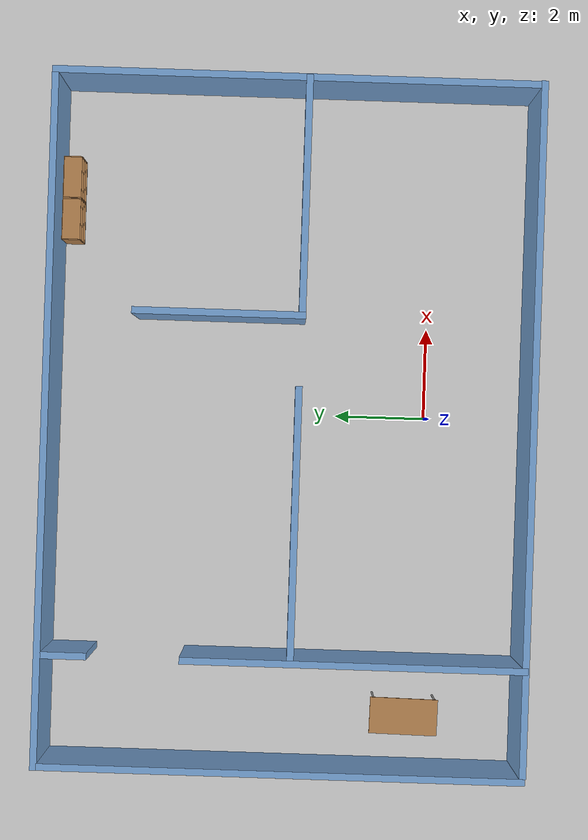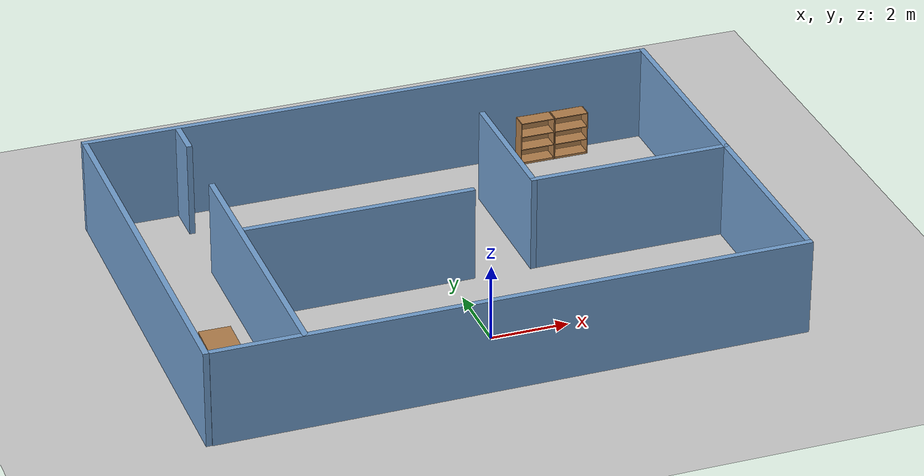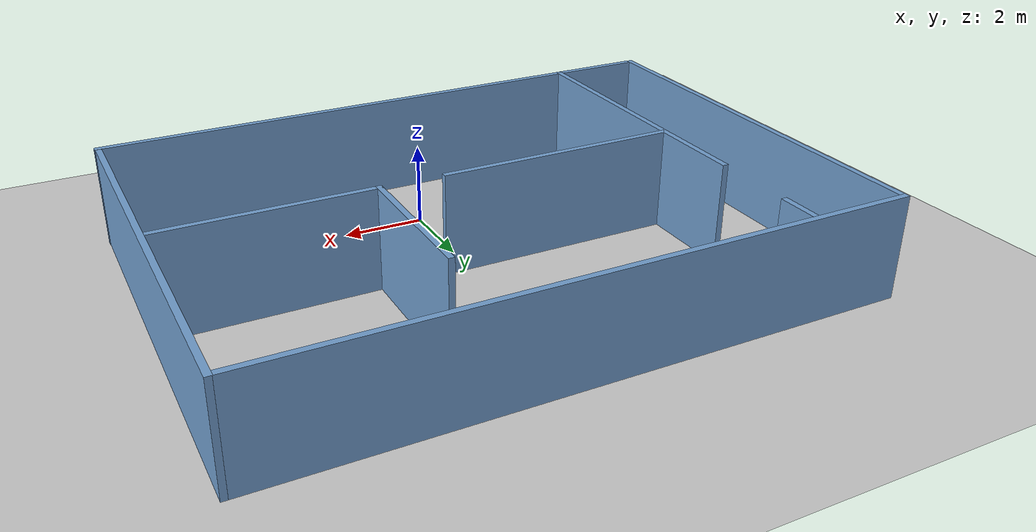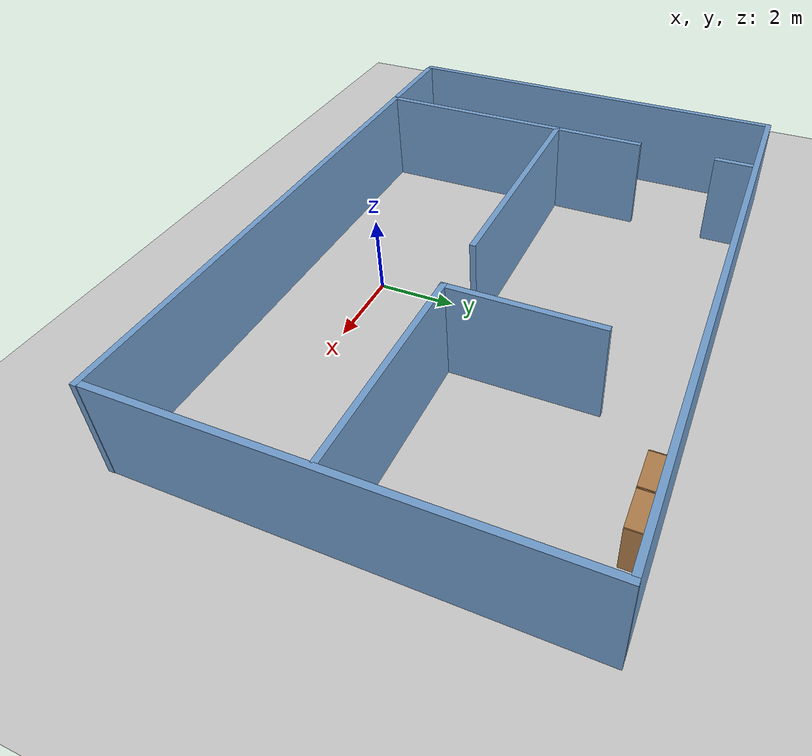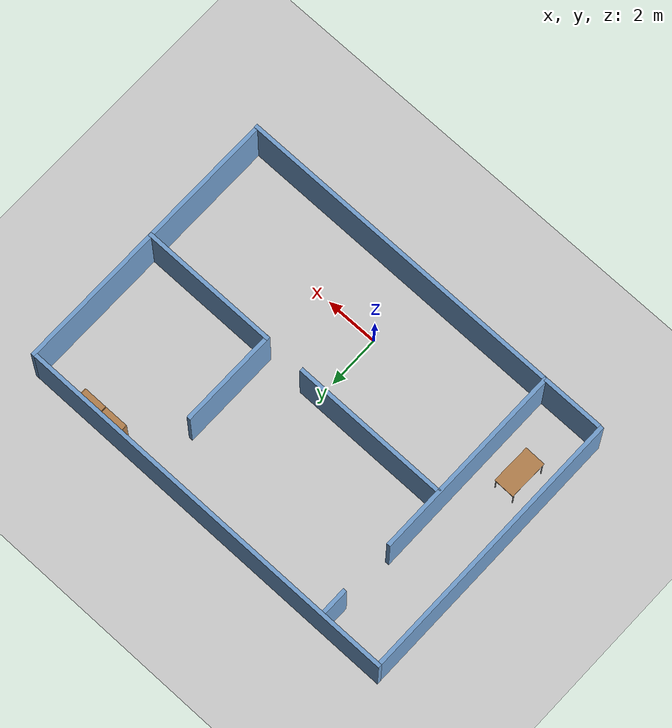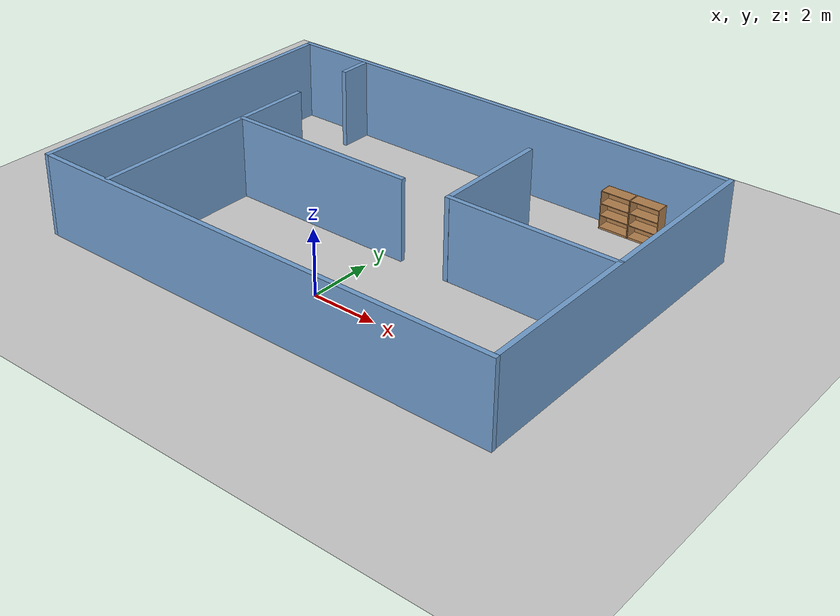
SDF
<sdf version="1.7">
 <world name="default">
  <light name="sun" type="directional">
   <pose>0 0 10 0 -0 0</pose>
   <diffuse>0.8 0.8 0.8 1</diffuse>
   <specular>0.2 0.2 0.2 1</specular>
   <attenuation>
    <range>1000</range>
    <constant>0.9</constant>
    <linear>0.01</linear>
    <quadratic>0.001</quadratic>
   </attenuation>
   <direction>-0.5 0.1 -0.9</direction>
   <spot><inner_angle>0</inner_angle><outer_angle>0</outer_angle><falloff>0</falloff></spot>
  </light>
  <model name="ground_plane">
   <static>1</static>
   <link name="link">
    <collision name="collision">
     <geometry><plane><normal>0 0 1</normal><size>100 100</size></plane></geometry>
     <surface><friction><ode><mu>100</mu><mu2>50</mu2></ode></friction></surface>
    </collision>
    <visual name="visual">
     <cast_shadows>0</cast_shadows>
     <geometry><plane><normal>0 0 1</normal><size>100 100</size></plane></geometry>
     <material>
      <script><uri>file://media/materials/scripts/gazebo.material</uri><name>Gazebo/Grey</name></script>
     </material>
    </visual>
   </link>
  </model>
  <gravity>0 0 -9.8</gravity>
  <magnetic_field>6e-06 2.3e-05 -4.2e-05</magnetic_field>
  <atmosphere type="adiabatic"/>
  <physics type="ode">
   <max_step_size>0.001</max_step_size>
   <real_time_factor>1</real_time_factor>
   <real_time_update_rate>1000</real_time_update_rate>
  </physics>
  <scene><ambient>0.4 0.4 0.4 1</ambient><background>0.7 0.7 0.7 1</background><shadows>1</shadows></scene>
  <spherical_coordinates>
   <surface_model>EARTH_WGS84</surface_model>
   <latitude_deg>0</latitude_deg>
   <longitude_deg>0</longitude_deg>
   <elevation>0</elevation>
   <heading_deg>0</heading_deg>
  </spherical_coordinates>
  <model name="evasec_store">
   <pose>-0.240729 3.03463 0 0 -0 0</pose>
   <link name="Wall_10">
    <collision name="Wall_10_Collision">
     <geometry><box><size>7.5 0.15 2.5</size></box></geometry>
     <pose>0 0 1.25 0 -0 0</pose>
    </collision>
    <visual name="Wall_10_Visual">
     <pose>0 0 1.25 0 -0 0</pose>
     <geometry><box><size>7.5 0.15 2.5</size></box></geometry>
     <material>
      <script><uri>file://media/materials/scripts/gazebo.material</uri><name>Gazebo/Grey</name></script>
      <ambient>0.447059 0.623529 0.811765 1</ambient>
     </material>
     <meta><layer>0</layer></meta>
    </visual>
    <pose>-5.12065 -1.55342 0 0 -0 1.5708</pose>
   </link>
   <link name="Wall_12">
    <collision name="Wall_12_Collision">
     <geometry><box><size>1 0.15 2.5</size></box></geometry>
     <pose>0 0 1.25 0 -0 0</pose>
    </collision>
    <visual name="Wall_12_Visual">
     <pose>0 0 1.25 0 -0 0</pose>
     <geometry><box><size>1 0.15 2.5</size></box></geometry>
     <material>
      <script><uri>file://media/materials/scripts/gazebo.material</uri><name>Gazebo/Grey</name></script>
      <ambient>0.447059 0.623529 0.811765 1</ambient>
     </material>
     <meta><layer>0</layer></meta>
    </visual>
    <pose>-5.09752 4.68596 0 0 -0 -1.5708</pose>
   </link>
   <link name="Wall_14">
    <collision name="Wall_14_Collision">
     <geometry><box><size>6 0.15 2.5</size></box></geometry>
     <pose>0 0 1.25 0 -0 0</pose>
    </collision>
    <visual name="Wall_14_Visual">
     <pose>0 0 1.25 0 -0 0</pose>
     <geometry><box><size>6 0.15 2.5</size></box></geometry>
     <material>
      <script><uri>file://media/materials/scripts/gazebo.material</uri><name>Gazebo/Grey</name></script>
      <ambient>0.447059 0.623529 0.811765 1</ambient>
     </material>
     <meta><layer>0</layer></meta>
    </visual>
    <pose>-2.14939 -0.185947 0 0 -0 0</pose>
   </link>
   <link name="Wall_16">
    <collision name="Wall_16_Collision">
     <geometry><box><size>3.75 0.15 2.5</size></box></geometry>
     <pose>0 0 1.25 0 -0 0</pose>
    </collision>
    <visual name="Wall_16_Visual">
     <pose>0 0 1.25 0 -0 0</pose>
     <geometry><box><size>3.75 0.15 2.5</size></box></geometry>
     <material>
      <script><uri>file://media/materials/scripts/gazebo.material</uri><name>Gazebo/Grey</name></script>
      <ambient>0.447059 0.623529 0.811765 1</ambient>
     </material>
     <meta><layer>0</layer></meta>
    </visual>
    <pose>2.37367 1.58599 0 0 -0 -1.5708</pose>
   </link>
   <link name="Wall_18">
    <collision name="Wall_18_Collision">
     <geometry><box><size>5.25 0.15 2.5</size></box></geometry>
     <pose>0 0 1.25 0 -0 0</pose>
    </collision>
    <visual name="Wall_18_Visual">
     <pose>0 0 1.25 0 -0 0</pose>
     <geometry><box><size>5.25 0.15 2.5</size></box></geometry>
     <material>
      <script><uri>file://media/materials/scripts/gazebo.material</uri><name>Gazebo/Grey</name></script>
      <ambient>0.447059 0.623529 0.811765 1</ambient>
     </material>
     <meta><layer>0</layer></meta>
    </visual>
    <pose>4.92367 -0.209078 0 0 -0 0</pose>
   </link>
   <link name="Wall_2">
    <collision name="Wall_2_Collision">
     <geometry><box><size>15 0.15 2.5</size></box></geometry>
     <pose>0 0 1.25 0 -0 0</pose>
    </collision>
    <visual name="Wall_2_Visual">
     <pose>0 0 1.25 0 -0 0</pose>
     <geometry><box><size>15 0.15 2.5</size></box></geometry>
     <material>
      <script><uri>file://media/materials/scripts/gazebo.material</uri><name>Gazebo/Grey</name></script>
      <ambient>0.447059 0.623529 0.811765 1</ambient>
     </material>
     <meta><layer>0</layer></meta>
    </visual>
    <pose>0.074626 -5.25065 0 0 -0 0</pose>
   </link>
   <link name="Wall_4">
    <collision name="Wall_4_Collision">
     <geometry><box><size>10.5 0.15 2.5</size></box></geometry>
     <pose>0 0 1.25 0 -0 0</pose>
    </collision>
    <visual name="Wall_4_Visual">
     <pose>0 0 1.25 0 -0 0</pose>
     <geometry><box><size>10.5 0.15 2.5</size></box></geometry>
     <material>
      <script><uri>file://media/materials/scripts/gazebo.material</uri><name>Gazebo/Grey</name></script>
      <ambient>0.447059 0.623529 0.811765 1</ambient>
     </material>
     <meta><layer>0</layer></meta>
    </visual>
    <pose>-7.49963 -0.059347 0 0 -0 -1.5708</pose>
   </link>
   <link name="Wall_6">
    <collision name="Wall_6_Collision">
     <geometry><box><size>15 0.15 2.5</size></box></geometry>
     <pose>0 0 1.25 0 -0 0</pose>
    </collision>
    <visual name="Wall_6_Visual">
     <pose>0 0 1.25 0 -0 0</pose>
     <geometry><box><size>15 0.15 2.5</size></box></geometry>
     <material>
      <script><uri>file://media/materials/scripts/gazebo.material</uri><name>Gazebo/Grey</name></script>
      <ambient>0.447059 0.623529 0.811765 1</ambient>
     </material>
     <meta><layer>0</layer></meta>
    </visual>
    <pose>-0.074626 5.25065 0 0 -0 0</pose>
   </link>
   <link name="Wall_8">
    <collision name="Wall_8_Collision">
     <geometry><box><size>10.5 0.15 2.5</size></box></geometry>
     <pose>0 0 1.25 0 -0 0</pose>
    </collision>
    <visual name="Wall_8_Visual">
     <pose>0 0 1.25 0 -0 0</pose>
     <geometry><box><size>10.5 0.15 2.5</size></box></geometry>
     <material>
      <script><uri>file://media/materials/scripts/gazebo.material</uri><name>Gazebo/Grey</name></script>
      <ambient>0.447059 0.623529 0.811765 1</ambient>
     </material>
     <meta><layer>0</layer></meta>
    </visual>
    <pose>7.48901 0.075648 0 0 -0 -1.5708</pose>
   </link>
   <static>1</static>
  </model>
  <model name="bookshelf">
   <static>1</static>
   <link name="link">
    <inertial><mass>1</mass></inertial>
    <collision name="back">
     <pose>0 0.005 0.6 0 -0 0</pose>
     <geometry><box><size>0.9 0.01 1.2</size></box></geometry>
    </collision>
    <visual name="visual1">
     <pose>0 0.005 0.6 0 -0 0</pose>
     <geometry><box><size>0.9 0.01 1.2</size></box></geometry>
     <material>
      <script><uri>file://media/materials/scripts/gazebo.material</uri><name>Gazebo/Wood</name></script>
     </material>
    </visual>
    <collision name="left_side">
     <pose>0.45 -0.195 0.6 0 -0 0</pose>
     <geometry><box><size>0.02 0.4 1.2</size></box></geometry>
    </collision>
    <visual name="visual2">
     <pose>0.45 -0.195 0.6 0 -0 0</pose>
     <geometry><box><size>0.02 0.4 1.2</size></box></geometry>
     <material>
      <script><uri>file://media/materials/scripts/gazebo.material</uri><name>Gazebo/Wood</name></script>
     </material>
    </visual>
    <collision name="right_side">
     <pose>-0.45 -0.195 0.6 0 -0 0</pose>
     <geometry><box><size>0.02 0.4 1.2</size></box></geometry>
    </collision>
    <visual name="visual3">
     <pose>-0.45 -0.195 0.6 0 -0 0</pose>
     <geometry><box><size>0.02 0.4 1.2</size></box></geometry>
     <material>
      <script><uri>file://media/materials/scripts/gazebo.material</uri><name>Gazebo/Wood</name></script>
     </material>
    </visual>
    <collision name="bottom">
     <pose>0 -0.195 0.03 0 -0 0</pose>
     <geometry><box><size>0.88 0.4 0.06</size></box></geometry>
    </collision>
    <visual name="visual4">
     <pose>0 -0.195 0.03 0 -0 0</pose>
     <geometry><box><size>0.88 0.4 0.06</size></box></geometry>
     <material>
      <script><uri>file://media/materials/scripts/gazebo.material</uri><name>Gazebo/Wood</name></script>
     </material>
    </visual>
    <collision name="top">
     <pose>0 -0.195 1.19 0 -0 0</pose>
     <geometry><box><size>0.88 0.4 0.02</size></box></geometry>
    </collision>
    <visual name="visual5">
     <pose>0 -0.195 1.19 0 -0 0</pose>
     <geometry><box><size>0.88 0.4 0.02</size></box></geometry>
     <material>
      <script><uri>file://media/materials/scripts/gazebo.material</uri><name>Gazebo/Wood</name></script>
     </material>
    </visual>
    <collision name="low_shelf">
     <pose>0 -0.195 0.43 0 -0 0</pose>
     <geometry><box><size>0.88 0.4 0.02</size></box></geometry>
    </collision>
    <visual name="visual6">
     <pose>0 -0.195 0.43 0 -0 0</pose>
     <geometry><box><size>0.88 0.4 0.02</size></box></geometry>
     <material>
      <script><uri>file://media/materials/scripts/gazebo.material</uri><name>Gazebo/Wood</name></script>
     </material>
    </visual>
    <collision name="high_shelf">
     <pose>0 -0.195 0.8 0 -0 0</pose>
     <geometry><box><size>0.88 0.4 0.02</size></box></geometry>
    </collision>
    <visual name="visual7">
     <pose>0 -0.195 0.8 0 -0 0</pose>
     <geometry><box><size>0.88 0.4 0.02</size></box></geometry>
     <material>
      <script><uri>file://media/materials/scripts/gazebo.material</uri><name>Gazebo/Wood</name></script>
     </material>
    </visual>
   </link>
   <pose>4.16543 8.17989 0 0 -0 0</pose>
  </model>
  <model name="bookshelf_0">
   <static>1</static>
   <link name="link">
    <inertial><mass>1</mass></inertial>
    <collision name="back">
     <pose>0 0.005 0.6 0 -0 0</pose>
     <geometry><box><size>0.9 0.01 1.2</size></box></geometry>
    </collision>
    <visual name="visual1">
     <pose>0 0.005 0.6 0 -0 0</pose>
     <geometry><box><size>0.9 0.01 1.2</size></box></geometry>
     <material>
      <script><uri>file://media/materials/scripts/gazebo.material</uri><name>Gazebo/Wood</name></script>
     </material>
    </visual>
    <collision name="left_side">
     <pose>0.45 -0.195 0.6 0 -0 0</pose>
     <geometry><box><size>0.02 0.4 1.2</size></box></geometry>
    </collision>
    <visual name="visual2">
     <pose>0.45 -0.195 0.6 0 -0 0</pose>
     <geometry><box><size>0.02 0.4 1.2</size></box></geometry>
     <material>
      <script><uri>file://media/materials/scripts/gazebo.material</uri><name>Gazebo/Wood</name></script>
     </material>
    </visual>
    <collision name="right_side">
     <pose>-0.45 -0.195 0.6 0 -0 0</pose>
     <geometry><box><size>0.02 0.4 1.2</size></box></geometry>
    </collision>
    <visual name="visual3">
     <pose>-0.45 -0.195 0.6 0 -0 0</pose>
     <geometry><box><size>0.02 0.4 1.2</size></box></geometry>
     <material>
      <script><uri>file://media/materials/scripts/gazebo.material</uri><name>Gazebo/Wood</name></script>
     </material>
    </visual>
    <collision name="bottom">
     <pose>0 -0.195 0.03 0 -0 0</pose>
     <geometry><box><size>0.88 0.4 0.06</size></box></geometry>
    </collision>
    <visual name="visual4">
     <pose>0 -0.195 0.03 0 -0 0</pose>
     <geometry><box><size>0.88 0.4 0.06</size></box></geometry>
     <material>
      <script><uri>file://media/materials/scripts/gazebo.material</uri><name>Gazebo/Wood</name></script>
     </material>
    </visual>
    <collision name="top">
     <pose>0 -0.195 1.19 0 -0 0</pose>
     <geometry><box><size>0.88 0.4 0.02</size></box></geometry>
    </collision>
    <visual name="visual5">
     <pose>0 -0.195 1.19 0 -0 0</pose>
     <geometry><box><size>0.88 0.4 0.02</size></box></geometry>
     <material>
      <script><uri>file://media/materials/scripts/gazebo.material</uri><name>Gazebo/Wood</name></script>
     </material>
    </visual>
    <collision name="low_shelf">
     <pose>0 -0.195 0.43 0 -0 0</pose>
     <geometry><box><size>0.88 0.4 0.02</size></box></geometry>
    </collision>
    <visual name="visual6">
     <pose>0 -0.195 0.43 0 -0 0</pose>
     <geometry><box><size>0.88 0.4 0.02</size></box></geometry>
     <material>
      <script><uri>file://media/materials/scripts/gazebo.material</uri><name>Gazebo/Wood</name></script>
     </material>
    </visual>
    <collision name="high_shelf">
     <pose>0 -0.195 0.8 0 -0 0</pose>
     <geometry><box><size>0.88 0.4 0.02</size></box></geometry>
    </collision>
    <visual name="visual7">
     <pose>0 -0.195 0.8 0 -0 0</pose>
     <geometry><box><size>0.88 0.4 0.02</size></box></geometry>
     <material>
      <script><uri>file://media/materials/scripts/gazebo.material</uri><name>Gazebo/Wood</name></script>
     </material>
    </visual>
   </link>
   <pose>5.09029 8.17936 0 0 -0 0</pose>
  </model>
  <model name="table_0">
   <static>1</static>
   <link name="link">
    <collision name="surface">
     <pose>0 0 1 0 -0 0</pose>
     <geometry><box><size>1.5 0.8 0.03</size></box></geometry>
     <surface><friction><ode><mu>0.6</mu><mu2>0.6</mu2></ode></friction></surface>
    </collision>
    <visual name="visual1">
     <pose>0 0 1 0 -0 0</pose>
     <geometry><box><size>1.5 0.8 0.03</size></box></geometry>
     <material>
      <script><uri>file://media/materials/scripts/gazebo.material</uri><name>Gazebo/Wood</name></script>
     </material>
    </visual>
    <collision name="front_left_leg">
     <pose>0.68 0.38 0.5 0 -0 0</pose>
     <geometry><cylinder><radius>0.02</radius><length>1</length></cylinder></geometry>
    </collision>
    <visual name="front_left_leg">
     <pose>0.68 0.38 0.5 0 -0 0</pose>
     <geometry><cylinder><radius>0.02</radius><length>1</length></cylinder></geometry>
     <material>
      <script><uri>file://media/materials/scripts/gazebo.material</uri><name>Gazebo/Grey</name></script>
     </material>
    </visual>
    <collision name="front_right_leg">
     <pose>0.68 -0.38 0.5 0 -0 0</pose>
     <geometry><cylinder><radius>0.02</radius><length>1</length></cylinder></geometry>
    </collision>
    <visual name="front_right_leg">
     <pose>0.68 -0.38 0.5 0 -0 0</pose>
     <geometry><cylinder><radius>0.02</radius><length>1</length></cylinder></geometry>
     <material>
      <script><uri>file://media/materials/scripts/gazebo.material</uri><name>Gazebo/Grey</name></script>
     </material>
    </visual>
    <collision name="back_right_leg">
     <pose>-0.68 -0.38 0.5 0 -0 0</pose>
     <geometry><cylinder><radius>0.02</radius><length>1</length></cylinder></geometry>
    </collision>
    <visual name="back_right_leg">
     <pose>-0.68 -0.38 0.5 0 -0 0</pose>
     <geometry><cylinder><radius>0.02</radius><length>1</length></cylinder></geometry>
     <material>
      <script><uri>file://media/materials/scripts/gazebo.material</uri><name>Gazebo/Grey</name></script>
     </material>
    </visual>
    <collision name="back_left_leg">
     <pose>-0.68 0.38 0.5 0 -0 0</pose>
     <geometry><cylinder><radius>0.02</radius><length>1</length></cylinder></geometry>
    </collision>
    <visual name="back_left_leg">
     <pose>-0.68 0.38 0.5 0 -0 0</pose>
     <geometry><cylinder><radius>0.02</radius><length>1</length></cylinder></geometry>
     <material>
      <script><uri>file://media/materials/scripts/gazebo.material</uri><name>Gazebo/Grey</name></script>
     </material>
    </visual>
   </link>
   <pose>-6.60445 0.293579 0 0 0 -1.58649</pose>
  </model>
 </world>
</sdf>
